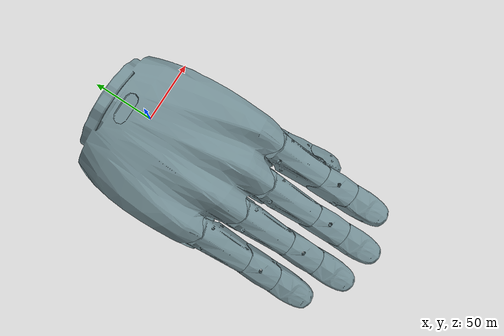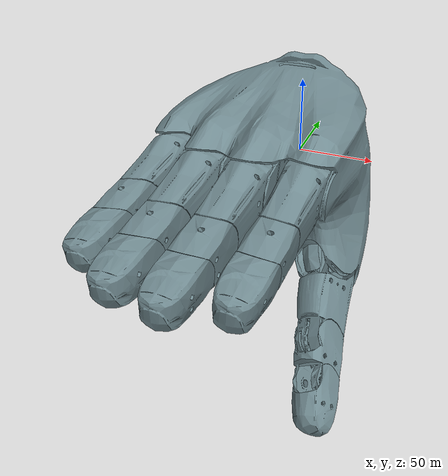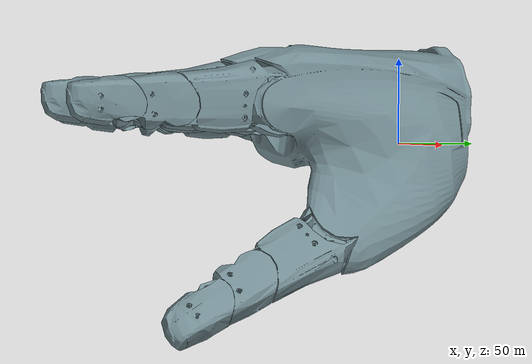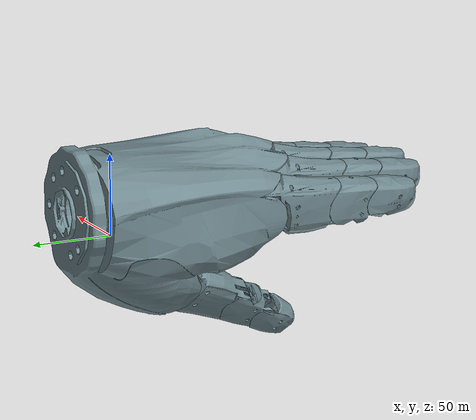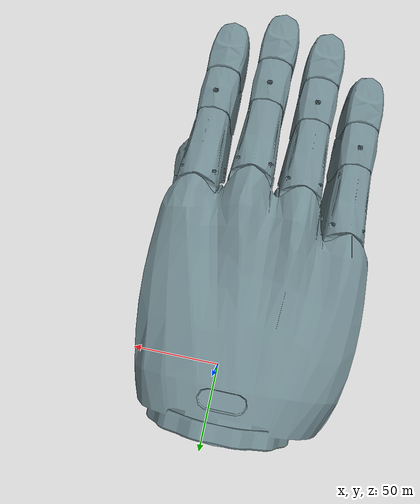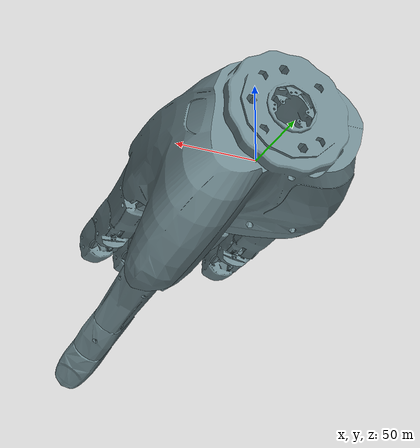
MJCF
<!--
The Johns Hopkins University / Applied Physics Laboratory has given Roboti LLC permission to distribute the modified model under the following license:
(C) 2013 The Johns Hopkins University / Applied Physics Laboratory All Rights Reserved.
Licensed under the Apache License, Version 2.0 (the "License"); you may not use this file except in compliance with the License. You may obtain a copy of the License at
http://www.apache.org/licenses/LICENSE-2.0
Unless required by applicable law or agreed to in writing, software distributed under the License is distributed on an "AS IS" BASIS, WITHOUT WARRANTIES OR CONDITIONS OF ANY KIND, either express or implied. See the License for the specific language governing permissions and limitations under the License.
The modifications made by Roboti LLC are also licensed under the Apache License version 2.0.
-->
<mujoco model="BHAM">

    <compiler angle="radian" meshdir="mesh/" texturedir="texture/" convexhull="true" coordinate="local"/>
    <option timestep="0.002" tolerance="1e-10" iterations="50" apirate="50" impratio="1.75" cone="elliptic"/>
    <size njmax="5000" nconmax="500" nstack="500000"/>

    <default>
		<default class="BHAM">
			<geom material="MatMesh" contype="1" rgba="0.44 0.54 0.565 1" conaffinity="1" condim="4" solimp="0.9 0.95 0.001" solref="0.008 1.0" margin="0.001"/>
        	<joint limited="true" damping="0.2" armature=".01"/>
        	<site material="MatTouch" type="ellipsoid" group="3"/>
            <position kp="1" ctrllimited="true" forcelimited="true" forcerange="-1.25 1.25"/>
		</default>

        <default class="IMU">
	        <site material="MatIMU" type="box" group="4"/>
        </default>

        <default class="free">
            <joint type="free" damping="0" armature="0" limited="false"/>
        </default>
    </default>

    <statistic extent="1" center="0 -0.2 0.2"/>

    <visual>
    	<global fovy="45"/>
        <quality shadowsize="10000"/>
    </visual>

    <asset>
		<mesh name="righthandbase" 		file="righthandbase.stl"/>
		<mesh name="palm1" 		file="palm1.stl"/>
		<mesh name="palm2" 		file="palm2.stl"/>
		<mesh name="palm3" 		file="palm3.stl"/>
		<mesh name="palm4" 		file="palm4.stl"/>
		<mesh name="palm5" 		file="palm5.stl"/>
		<mesh name="palm6" 		file="palm6.stl"/>
		<mesh name="palm7" 		file="palm7.stl"/>
		<mesh name="palm8" 		file="palm8.stl"/>
		<mesh name="palm9" 		file="palm9.stl"/>
		<mesh name="palm10" 		file="palm10.stl"/>
		<mesh name="palm11" 		file="palm11.stl"/>
		<mesh name="palm12" 		file="palm12.stl"/>
		<mesh name="palm13" 		file="palm13.stl"/>
		<mesh name="palm14" 		file="palm14.stl"/>
		<mesh name="palm15" 		file="palm15.stl"/>
		<mesh name="palm16" 		file="palm16.stl"/>
		<mesh name="palm17" 		file="palm17.stl"/>
		<mesh name="palm18" 		file="palm18.stl"/>
		<mesh name="palm19" 		file="palm19.stl"/>
		<mesh name="fore_basecover" 	file="fore_basecover.stl"/>
		<mesh name="fore_distalp" 		file="fore_distalp.stl"/>
		<mesh name="fore_middlep" 		file="fore_middlep.stl"/>
		<mesh name="fore_proximalp" 	file="fore_proximalp.stl"/>
		<mesh name="little_basecover" 	file="little_basecover.stl"/>
		<mesh name="little_distalp" 	file="little_distalp.stl"/>
		<mesh name="little_middlep" 	file="little_middlep.stl"/>
		<mesh name="little_proximalp" 	file="little_proximalp.stl"/>
		<mesh name="middle_basecover" 	file="middle_basecover.stl"/>
		<mesh name="middle_distalp" 	file="middle_distalp.stl"/>
		<mesh name="middle_middlep" 	file="middle_middlep.stl"/>
		<mesh name="middle_proximalp" 	file="middle_proximalp.stl"/>
		<mesh name="ring_basecover" 	file="ring_basecover.stl"/>
		<mesh name="ring_distalp" 		file="ring_distalp.stl"/>
		<mesh name="ring_middlep" 		file="ring_middlep.stl"/>
		<mesh name="ring_proximalp" 	file="ring_proximalp.stl"/>
		<mesh name="thumb_basecover" 	file="thumb_basecover.stl"/>
		<mesh name="thumb_distalp" 		file="thumb_distalp.stl"/>
		<mesh name="thumb_middlep" 		file="thumb_middlep.stl"/>
		<mesh name="thumb_proximalp" 	file="thumb_proximalp.stl"/>

		<texture type="skybox" builtin="gradient" rgb1=".4 .6 .8" rgb2="0 0 0"
			width="100" height="100"/>
		<texture name="groundplane" type="2d" builtin="checker" rgb1=".2 .3 .4" rgb2=".1 .2 .3"
            width="100" height="100"/>
		<texture name="skin" type="cube" file="skin.png"/>
		<texture name="marble2d" type="2d" file="marble.png"/>
		<texture name="marblecube" type="cube" file="marble.png"/>

		<material name="groundplane" texture="groundplane" texrepeat="10 10"/>
		<material name="table2d" texture="marble2d" reflectance="0.3" rgba=".8 .8 .8 1"/>
		<material name="tablecube" texture="marblecube" rgba=".8 .8 .8 1"/>
        <material name="MatTouch" rgba=".3 .9 .3 .3"/>
        <material name="MatIMU" rgba=".1 .1 .9 1"/>
        <material name="MatMesh" rgba=".6 .6 .6 1"/>
	</asset>

    <contact>
		<exclude body1="palm" body2="thumb1"/>
        <exclude body1="palm" body2="fore1"/>
        <exclude body1="palm" body2="middle1"/>
        <exclude body1="palm" body2="ring1"/>
        <exclude body1="palm" body2="little1"/>

    </contact>

    <worldbody>
        <camera name="fixed" pos="-1 0 0.7" zaxis="-1 0 1" fovy="60" ipd="0.068"/>

        <body name="mocap" mocap="true" pos="-0.005 0.175 2.02">
            <geom type="box" group="2" size="0.02 0.02 0.02" contype="0" conaffinity="0" rgba=".9 .5 .5 1"/>
        </body>

		<!-- ======= ROBOT ======= -->
        <body childclass="BHAM" name="forearm" pos="0 0 2" euler="0 3.141592 3.141592">
            <joint class="free"/>
            <geom type="cylinder" size="0.02 0.01"/>
            <body name="palm" pos="0 0 0">
            	<geom type="mesh" contype="0" conaffinity="0" mesh="righthandbase"/>
                <geom type="mesh" mass="0.000001" mesh="palm1" rgba="0 0 0 0"/>
                <geom type="mesh" mass="0.000001" mesh="palm2" rgba="0 0 0 0"/>
                <geom type="mesh" mass="0.000001" mesh="palm3" rgba="0 0 0 0"/>
                <geom type="mesh" mass="0.000001" mesh="palm4" rgba="0 0 0 0"/>
                <geom type="mesh" mass="0.000001" mesh="palm5" rgba="0 0 0 0"/>
                <geom type="mesh" mass="0.000001" mesh="palm6" rgba="0 0 0 0"/>
                <geom type="mesh" mass="0.000001" mesh="palm7" rgba="0 0 0 0"/>
                <geom type="mesh" mass="0.000001" mesh="palm8" rgba="0 0 0 0"/>
                <geom type="mesh" mass="0.000001" mesh="palm9" rgba="0 0 0 0"/>
                <geom type="mesh" mass="0.000001" mesh="palm10" rgba="0 0 0 0"/>
                <geom type="mesh" mass="0.000001" mesh="palm11" rgba="0 0 0 0"/>
                <geom type="mesh" mass="0.000001" mesh="palm12" rgba="0 0 0 0"/>
                <geom type="mesh" mass="0.000001" mesh="palm13" rgba="0 0 0 0"/>
                <geom type="mesh" mass="0.000001" mesh="palm14" rgba="0 0 0 0"/>
                <geom type="mesh" mass="0.000001" mesh="palm15" rgba="0 0 0 0"/>
                <geom type="mesh" mass="0.000001" mesh="palm16" rgba="0 0 0 0"/>
                <geom type="mesh" mass="0.000001" mesh="palm17" rgba="0 0 0 0"/>
                <geom type="mesh" mass="0.000001" mesh="palm18" rgba="0 0 0 0"/>
                <geom type="mesh" mass="0.000001" mesh="palm19" rgba="0 0 0 0"/>

                <!-- ======= THUMB  ======= -->
                <body name="thumb0">
               	<joint name="thumb_ABD" type="hinge" pos="0.0443196 0.0787516 0.0622977" axis="0.549586 -0.456218 0.699872" range="-0.26180 0.26180"/>
                	<geom type="mesh" mass="0.000001" mesh="thumb_basecover"/>
					<body name="thumb1">
						<joint name="thumb_IN" type="hinge" pos="0.036754 0.056714 0.04474" axis="-0.814200 -0.104803 0.571047" range="0.087266 1.5708" ref="0.087266"/>
                		<geom type="mesh" mass="0.000001" mesh="thumb_proximalp"/>
						<body name="thumb2">
							<joint name="thumb_OUT" type="hinge" pos="0.046615 0.10503 0.06708" axis="-0.814200 -0.104803 0.571047" range="0.087266 1.4835" ref="0.087266"/>
							<geom type="mesh" mass="0.000001" mesh="thumb_middlep"/>
							<body name="thumb3">
								<joint name="thumb_TIP" type="hinge" pos="0.050016 0.12692 0.078691" axis="-0.814200 -0.104803 0.571047" range="0.087266 1.4835" ref="0.087266"/>
								<geom type="mesh" mass="0.000001" mesh="thumb_distalp"/>
							</body>
						</body>
					</body>
				</body>

				<!-- ======= FORE  ======= -->
                <body name="fore0">
                	<joint name="fore_ABD" type="hinge" pos="0.0369151 0.107841 -0.00256829" axis="0.087156 0.000000 -0.996195" range="-0.26180 0.26180"/>
					<geom type="mesh" mass="0.000001" mesh="fore_basecover"/>
					<body name="fore1">
						<joint name="fore_IN" type="hinge" pos="0.029434 0.08577 -0.020007" axis="0.996195 0.000000 0.087156" range="0.087266 1.5708" ref="0.087266"/>
                		<geom type="mesh" mass="0.000001" mesh="fore_proximalp"/>
						<body name="fore2">
							<joint name="fore_OUT" type="hinge" pos="0.029014 0.1399 -0.019052" axis="0.996195 0.000000 0.087156" range="0.087266 1.4835" ref="0.087266"/>
							<geom type="mesh" mass="0.000001" mesh="fore_middlep"/>
							<body name="fore3">
								<joint name="fore_TIP" type="hinge" pos="0.030576 0.16486 -0.018924" axis="0.996195 0.000000 0.087156" range="0.087266 1.4835" ref="0.087266"/>
								<geom type="mesh" mass="0.000001" mesh="fore_distalp"/>
							</body>
						</body>
					</body>
				</body>

				<!-- ======= MIDDLE  ======= -->
                <body name="middle0">
					<joint name="middle_ABD" type="hinge" pos="0.0101112 0.117841 -0.00374828" axis="0.000000 0.000000 -1.000000" range="-0.26180 0.26180"/>
					<geom type="mesh" mass="0.000001" mesh="middle_basecover"/>
					<body name="middle1">
						<joint name="middle_IN" type="hinge" pos="0.0026354 0.09577 -0.021189" axis="1.000000 0.000000 0.000000" range="0.087266 1.5708" ref="0.087266"/>
                		<geom type="mesh" mass="0.000001" mesh="middle_proximalp"/>
						<body name="middle2">
							<joint name="middle_OUT" type="hinge" pos="0.0023 0.1499 -0.020201" axis="1.000000 0.000000 0.000000" range="0.087266 1.4835" ref="0.087266"/>
							<geom type="mesh" mass="0.000001" mesh="middle_middlep"/>
							<body name="middle3">
								<joint name="middle_TIP" type="hinge" pos="0.003867 0.17486 -0.02021" axis="1.000000 0.000000 0.000000" range="0.087266 1.4835" ref="0.087266"/>
								<geom type="mesh" mass="0.000001" mesh="middle_distalp"/>
							</body>
						</body>
					</body>
				</body>

				<!-- ======= RING  ======= -->
                <body name="ring0">
					<joint name="ring_ABD" type="hinge" pos="-0.0166936 0.112641 -0.00258767" axis="-0.087156 0.000000 -0.996195" range="-0.26180 0.26180"/>
					<geom type="mesh" mass="0.000001" mesh="ring_basecover"/>
					<body name="ring1">
						<joint name="ring_IN" type="hinge" pos="-0.024164 0.09057 -0.020031" axis="0.996195 0.000000 -0.087156" range="0.087266 1.5708" ref="0.087266"/>
                		<geom type="mesh" mass="0.000001" mesh="ring_proximalp"/>
						<body name="ring2">
							<joint name="ring_OUT" type="hinge" pos="-0.024412 0.1447 -0.019017" axis="0.996195 0.000000 -0.087156" range="0.087266 1.4835" ref="0.087266"/>
							<geom type="mesh" mass="0.000001" mesh="ring_middlep"/>
							<body name="ring3">
								<joint name="ring_TIP" type="hinge" pos="-0.022852 0.16966 -0.019162" axis="0.996195 0.000000 -0.087156" range="0.087266 1.4835" ref="0.087266"/>
								<geom type="mesh" mass="0.000001" mesh="ring_distalp"/>
							</body>
						</body>
					</body>
				</body>

				<!-- ======= LITTLE  ======= -->
                <body name="little0">
					<joint name="little_ABD" type="hinge" pos="-0.050761 0.07157 -0.016541" axis="-0.173648 0.000000 -0.984808" range="-0.26180 0.26180"/>
					<geom type="mesh" mass="0.000001" mesh="little_basecover"/>
					<body name="little1">
						<joint name="little_IN" type="hinge" pos="-0.050761 0.07157 -0.016541" axis="0.98481 0.00000 -0.17365" range="0.087266 1.5708" ref="0.087266"/>
                		<geom type="mesh" mass="0.000001" mesh="little_proximalp"/>
						<body name="little2">
						<joint name="little_OUT" type="hinge" pos="-0.05092 0.1257 -0.015509" axis="0.98481 0.00000 -0.17365" range="0.087266 1.4835" ref="0.087266"/>
							<geom type="mesh" mass="0.000001" mesh="little_middlep"/>
							<body name="little3">
							<joint name="little_TIP" type="hinge" pos="-0.049378 0.15066 -0.01579" axis="0.98481 0.00000 -0.17365" range="0.087266 1.4835" ref="0.087266"/>
								<geom type="mesh" mass="0.000001" mesh="little_distalp"/>
							</body>
						</body>
					</body>
				</body>
        	</body>
        </body>

    </worldbody>

	<equality>
        <weld body1="mocap" body2="forearm" solref="0.01 1" solimp=".9 .9 0.01"/>
    </equality>

	<actuator>
        <position name="A_thumb_ABD"  class="BHAM" joint="thumb_ABD"  ctrlrange="-0.26180 0.26180"/>
        <position name="A_thumb_IN"  class="BHAM" joint="thumb_IN"  ctrlrange="0.1571 1.5708"/>
        <position name="A_thumb_OUT"  class="BHAM" joint="thumb_OUT"  ctrlrange="0.1571 1.4835"/>
        <position name="A_thumb_TIP"  class="BHAM" joint="thumb_TIP"  ctrlrange="0.1571 1.4835"/>
        <position name="A_fore_ABD"  class="BHAM" joint="fore_ABD"  ctrlrange="-0.26180 0.26180"/>
        <position name="A_fore_IN"  class="BHAM" joint="fore_IN"  ctrlrange="0.22 1.5708"/>
        <position name="A_fore_OUT"  class="BHAM" joint="fore_OUT"  ctrlrange="0.1571 1.4835"/>
        <position name="A_fore_TIP"  class="BHAM" joint="fore_TIP"  ctrlrange="0.1571 1.4835"/>
        <position name="A_middle_ABD"  class="BHAM" joint="middle_ABD"  ctrlrange="-0.26180 0.26180"/>
        <position name="A_middle_IN"  class="BHAM" joint="middle_IN"  ctrlrange="0.18 1.5708"/>
        <position name="A_middle_OUT"  class="BHAM" joint="middle_OUT"  ctrlrange="0.1571 1.4835"/>
        <position name="A_middle_TIP"  class="BHAM" joint="middle_TIP"  ctrlrange="0.1571 1.4835"/>
        <position name="A_ring_ABD"  class="BHAM" joint="ring_ABD"  ctrlrange="-0.26180 0.26180"/>
        <position name="A_ring_IN"  class="BHAM" joint="ring_IN"  ctrlrange="0.22 1.5708"/>
        <position name="A_ring_OUT"  class="BHAM" joint="ring_OUT"  ctrlrange="0.1571 1.4835"/>
        <position name="A_ring_TIP"  class="BHAM" joint="ring_TIP"  ctrlrange="0.1571 1.4835"/>
        <position name="A_little_ABD"  class="BHAM" joint="little_ABD"  ctrlrange="-0.26180 0.26180"/>
        <position name="A_little_IN"  class="BHAM" joint="little_IN"  ctrlrange="0.26 1.5708"/>
        <position name="A_little_OUT"  class="BHAM" joint="little_OUT"  ctrlrange="0.1571 1.4835"/>
        <position name="A_little_TIP"  class="BHAM" joint="little_TIP"  ctrlrange="0.18 1.4835"/>
	</actuator>

</mujoco>
